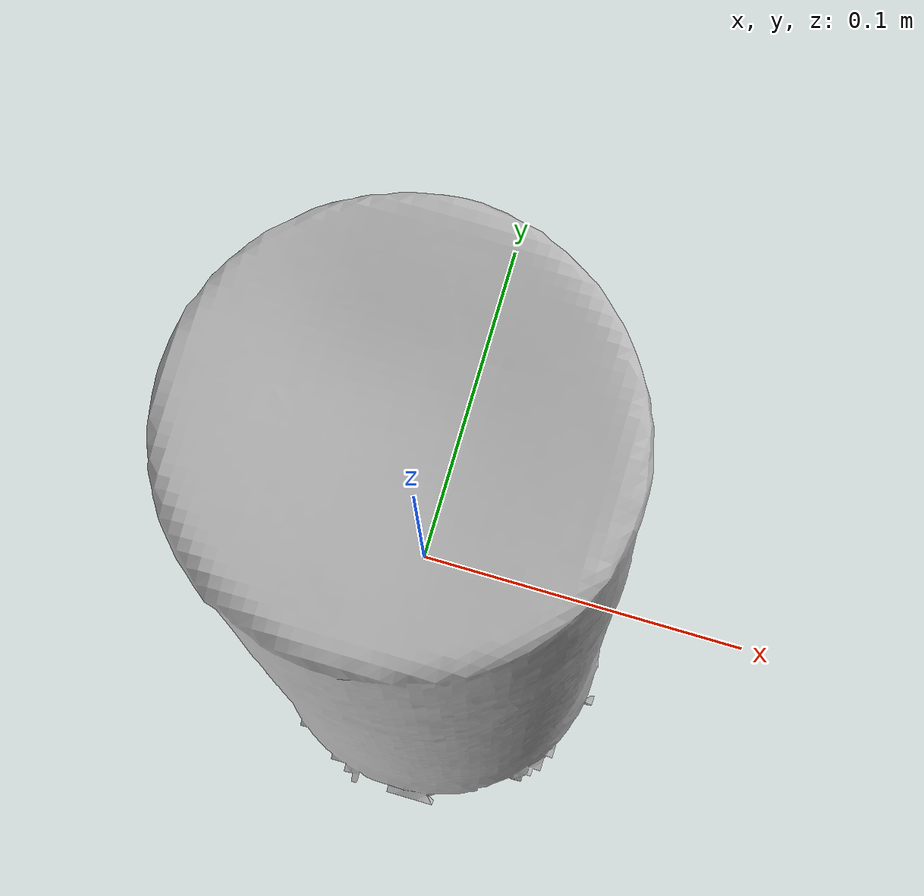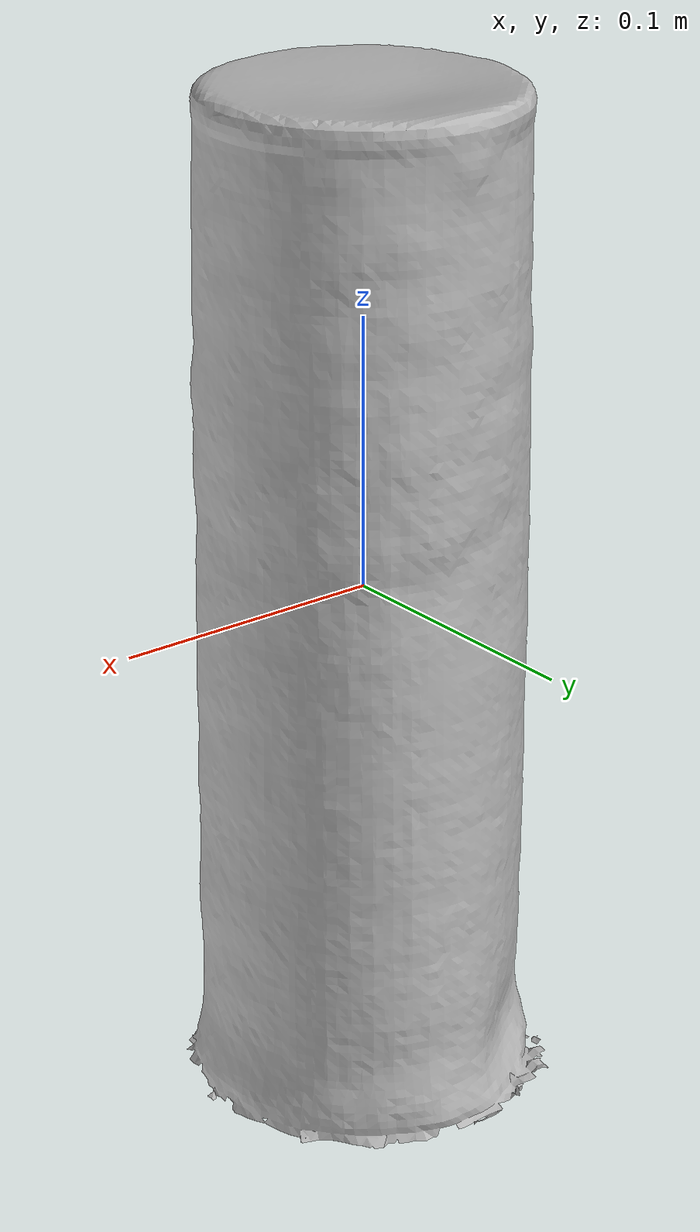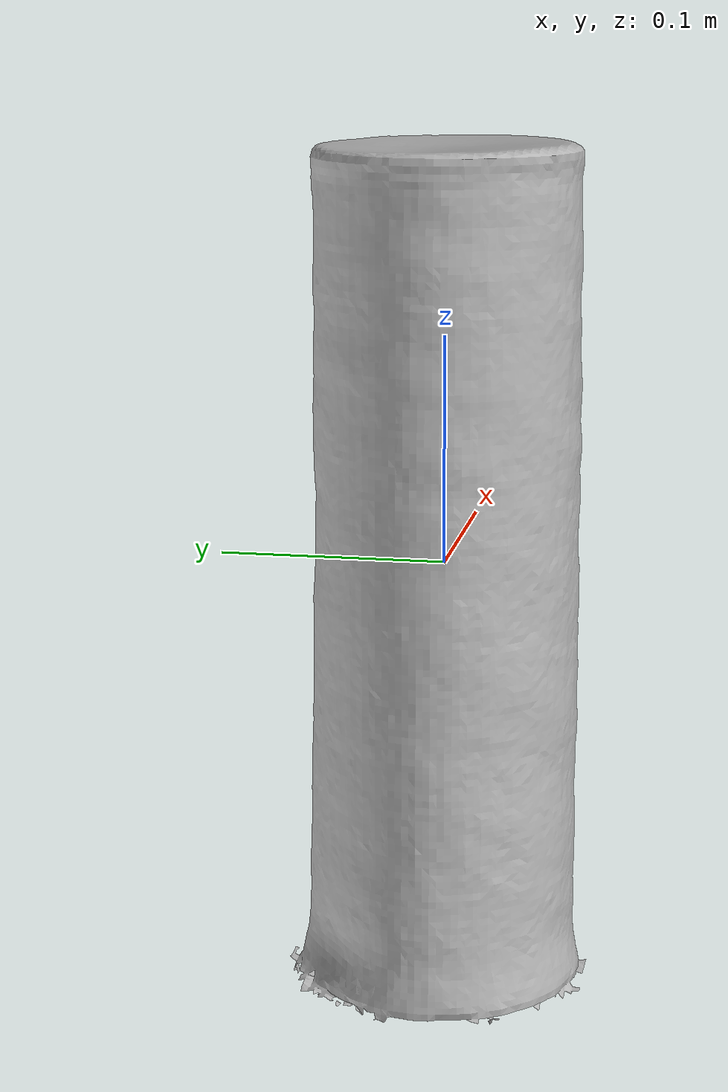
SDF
<sdf version="1.4">
  <model name="011_banana">
    <static>false</static>
    <link name="link">
      <inertial>
        <pose>-0.0027028300282028713 -0.0008094821252871621 0.0005728180931398884 -1.5874837307629108 1.3697975441664412 2.80523974637375</pose>
        <mass>0.062</mass>
        <inertia>
          <ixx>0.00022571771443348476</ixx>
          <ixy>-4.951979742764288e-20</ixy>
          <ixz>2.265889516999088e-20</ixz>
          <iyy>0.00017140544255496283</iyy>
          <iyz>4.490988752661118e-20</iyz>
          <izz>6.82081480668325e-05</izz>
        </inertia>
      </inertial>
      <collision name="collision">
        <geometry>
          <mesh>
            <uri>model://banana/meshes/banana.stl</uri>
            <scale>1.5 1.5 1.5</scale>
	        </mesh>
        </geometry>
        <surface>
      </surface>
      </collision>
      <visual name="visual">
        <geometry>
          <mesh>
            <uri>model://banana/meshes/textured_simple.obj</uri>
            <scale>1.55 1.55 1.55</scale>
	        </mesh>
        </geometry>
        <material>
          <script>
            <uri>model://banana/banana.material</uri>
            <scale>1.55 1.55 1.55</scale>
            <name>banana</name>
          </script>
        </material>
      </visual>
    </link>
  </model>
</sdf>
